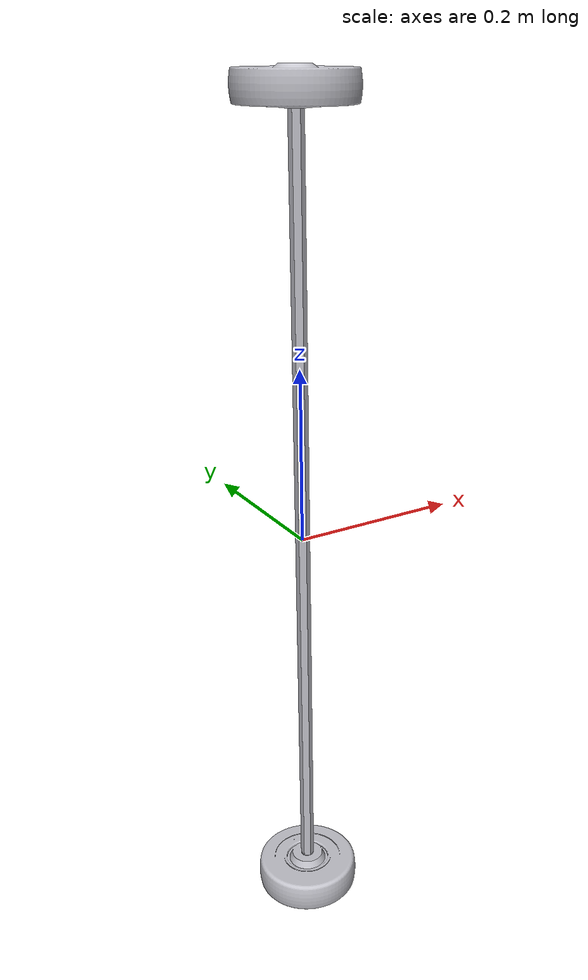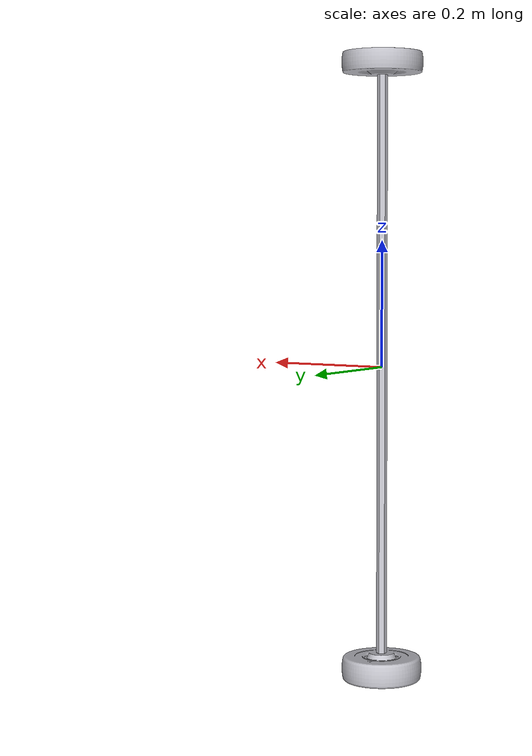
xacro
<?xml version="1.0" ?>
<robot name="robot" xmlns:xacro="http://www.ros.org/wiki/xacro">

<xacro:include filename="$(find robot_playground)/description/lorlens/materials.xacro" />
<xacro:include filename="$(find robot_playground)/description/lorlens/lorlens.gazebo" />
<link name="base_link">
<inertial>
    <origin xyz="-1.7582104591371063e-18 1.7582104591371063e-18 0.0" rpy="0 0 0"/>
    <mass value="1.2689630975018171"/>
    <inertia ixx="0.088436" iyy="0.088436" izz="3.6e-05" ixy="0.0" iyz="0.0" ixz="0.0"/>
  </inertial>
  <visual>
    <origin xyz="0 0 0" rpy="0 0 0"/>
    <geometry>
      <mesh filename="file:///$(find robot_playground)/meshes/lorlens/base_link.stl" scale="0.001 0.001 0.001"/>
    </geometry>
    <material name="silver"/>
  </visual>
  <collision>
    <origin xyz="0 0 0" rpy="0 0 0"/>
    <geometry>
      <mesh filename="file:///$(find robot_playground)/meshes/lorlens/base_link.stl" scale="0.001 0.001 0.001"/>
    </geometry>
  </collision>
</link>

<link name="right_1">
  <inertial>
    <origin xyz="-1.3921350368354625e-09 1.5592913802458983e-07 -0.024606173660177644" rpy="0 0 0"/>
    <mass value="3.6202254452450355"/>
    <inertia ixx="0.003987" iyy="0.003987" izz="0.007094" ixy="0.0" iyz="-0.0" ixz="0.0"/>
  </inertial>
  <visual>
    <origin xyz="0.0 -0.0 0.4572" rpy="0 0 0"/>
    <geometry>
      <mesh filename="file:///$(find robot_playground)/meshes/lorlens/right_1.stl" scale="0.001 0.001 0.001"/>
    </geometry>
    <material name="silver"/>
  </visual>
  <collision>
    <origin xyz="0.0 -0.0 0.4572" rpy="0 0 0"/>
    <geometry>
      <mesh filename="file:///$(find robot_playground)/meshes/lorlens/right_1.stl" scale="0.001 0.001 0.001"/>
    </geometry>
  </collision>
</link>

<link name="left_1">
  <inertial>
    <origin xyz="6.492212873234491e-15 -2.2801264027631916e-17 0.019215253585963266" rpy="0 0 0"/>
    <mass value="2.9858173995262103"/>
    <inertia ixx="0.003241" iyy="0.003241" izz="0.005999" ixy="-0.0" iyz="-0.0" ixz="0.0"/>
  </inertial>
  <visual>
    <origin xyz="0.0 -0.0 -0.4572" rpy="0 0 0"/>
    <geometry>
      <mesh filename="file:///$(find robot_playground)/meshes/lorlens/left_1.stl" scale="0.001 0.001 0.001"/>
    </geometry>
    <material name="silver"/>
  </visual>
  <collision>
    <origin xyz="0.0 -0.0 -0.4572" rpy="0 0 0"/>
    <geometry>
      <mesh filename="file:///$(find robot_playground)/meshes/lorlens/left_1.stl" scale="0.001 0.001 0.001"/>
    </geometry>
  </collision>
</link>

<joint name="joint_right" type="continuous">
  <origin xyz="0.0 0.0 -0.4572" rpy="0 0 0"/>
  <parent link="base_link"/>
  <child link="right_1"/>
  <axis xyz="0.0 0.0 -1.0"/>
</joint>

<joint name="joint_left" type="continuous">
  <origin xyz="0.0 0.0 0.4572" rpy="0 0 0"/>
  <parent link="base_link"/>
  <child link="left_1"/>
  <axis xyz="0.0 0.0 1.0"/>
</joint>

<xacro:property name="body_color" value="Gazebo/Silver" />

<gazebo>
  <plugin name="control" filename="libgazebo_ros_control.so"/>
</gazebo>
<gazebo reference="base_link">
  <material>${body_color}</material>
  <mu1>0.2</mu1>
  <mu2>0.2</mu2>
  <selfCollide>true</selfCollide>
  <gravity>true</gravity>
</gazebo>

<gazebo reference="right_1">
  <material>${body_color}</material>
  <mu1>0.2</mu1>
  <mu2>0.2</mu2>
  <selfCollide>true</selfCollide>
</gazebo>

<gazebo reference="left_1">
  <material>${body_color}</material>
  <mu1>0.2</mu1>
  <mu2>0.2</mu2>
  <selfCollide>true</selfCollide>
</gazebo>

</robot>
